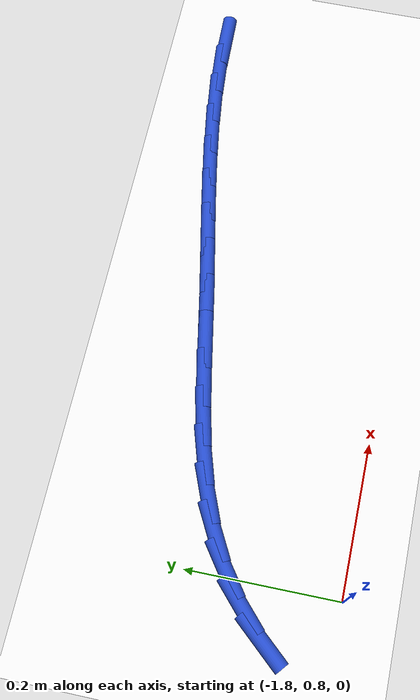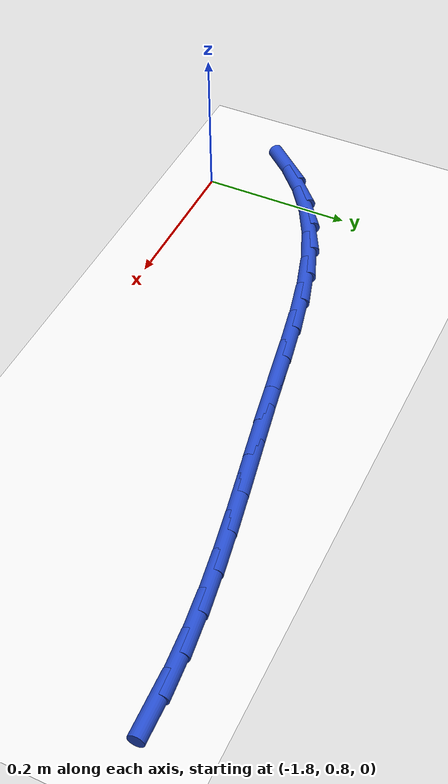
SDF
<sdf version="1.6">
 <world name="default">
  <model name="ground_plane">
   <static>1</static>
   <link name="link">
    <collision name="collision">
     <geometry><plane><normal>0 0 1</normal><size>100 100</size></plane></geometry>
     <surface><friction><ode><mu>100</mu><mu2>50</mu2></ode></friction></surface>
    </collision>
    <visual name="visual">
     <cast_shadows>0</cast_shadows>
     <geometry><plane><normal>0 0 1</normal><size>100 100</size></plane></geometry>
     <material>
      <script><uri>file://media/materials/scripts/gazebo.material</uri><name>Gazebo/WhiteGlow</name></script>
     </material>
    </visual>
   </link>
  </model>
  <model name="line">
   <link name="link_33">
    <pose>-1.0421362414602608 1.1120664891370888 0.01 0 1.57 0.03589282977141568</pose>
    <collision name="collision">
     <geometry><cylinder><radius>0.01</radius><length>0.08</length></cylinder></geometry>
    </collision>
    <visual name="visual">
     <material>
      <script><name>Gazebo/Blue</name><uri>file://media/materials/scripts/gazebo.material</uri></script>
     </material>
     <geometry><cylinder><radius>0.01</radius><length>0.08</length></cylinder></geometry>
    </visual>
   </link>
   <link name="link_34">
    <pose>-1.0915548540886764 1.110291953178951 0.01 0 1.57 0.09028207268165225</pose>
    <collision name="collision">
     <geometry><cylinder><radius>0.01</radius><length>0.08</length></cylinder></geometry>
    </collision>
    <visual name="visual">
     <material>
      <script><name>Gazebo/Blue</name><uri>file://media/materials/scripts/gazebo.material</uri></script>
     </material>
     <geometry><cylinder><radius>0.01</radius><length>0.08</length></cylinder></geometry>
    </visual>
   </link>
   <link name="link_35">
    <pose>-1.1419461207254604 1.1057301241764395 0.01 0 1.57 0.13293137946179848</pose>
    <collision name="collision">
     <geometry><cylinder><radius>0.01</radius><length>0.08</length></cylinder></geometry>
    </collision>
    <visual name="visual">
     <material>
      <script><name>Gazebo/Blue</name><uri>file://media/materials/scripts/gazebo.material</uri></script>
     </material>
     <geometry><cylinder><radius>0.01</radius><length>0.08</length></cylinder></geometry>
    </visual>
   </link>
   <link name="link_36">
    <pose>-1.1931289577275788 1.0988859576213652 0.01 0 1.57 0.16494818981463039</pose>
    <collision name="collision">
     <geometry><cylinder><radius>0.01</radius><length>0.08</length></cylinder></geometry>
    </collision>
    <visual name="visual">
     <material>
      <script><name>Gazebo/Blue</name><uri>file://media/materials/scripts/gazebo.material</uri></script>
     </material>
     <geometry><cylinder><radius>0.01</radius><length>0.08</length></cylinder></geometry>
    </visual>
   </link>
   <link name="link_37">
    <pose>-1.2449222814519982 1.0902644090055393 0.01 0 1.57 0.18723807308191537</pose>
    <collision name="collision">
     <geometry><cylinder><radius>0.01</radius><length>0.08</length></cylinder></geometry>
    </collision>
    <visual name="visual">
     <material>
      <script><name>Gazebo/Blue</name><uri>file://media/materials/scripts/gazebo.material</uri></script>
     </material>
     <geometry><cylinder><radius>0.01</radius><length>0.08</length></cylinder></geometry>
    </visual>
   </link>
   <link name="link_38">
    <pose>-1.2971450082556841 1.0803704338207734 0.01 0 1.57 0.20045831214298673</pose>
    <collision name="collision">
     <geometry><cylinder><radius>0.01</radius><length>0.08</length></cylinder></geometry>
    </collision>
    <visual name="visual">
     <material>
      <script><name>Gazebo/Blue</name><uri>file://media/materials/scripts/gazebo.material</uri></script>
     </material>
     <geometry><cylinder><radius>0.01</radius><length>0.08</length></cylinder></geometry>
    </visual>
   </link>
   <link name="link_39">
    <pose>-1.349616054495604 1.0697089875588792 0.01 0 1.57 0.20500290673838595</pose>
    <collision name="collision">
     <geometry><cylinder><radius>0.01</radius><length>0.08</length></cylinder></geometry>
    </collision>
    <visual name="visual">
     <material>
      <script><name>Gazebo/Blue</name><uri>file://media/materials/scripts/gazebo.material</uri></script>
     </material>
     <geometry><cylinder><radius>0.01</radius><length>0.08</length></cylinder></geometry>
    </visual>
   </link>
   <link name="link_40">
    <pose>-1.402154336528723 1.058785025711667 0.01 0 1.57 0.20099951129701538</pose>
    <collision name="collision">
     <geometry><cylinder><radius>0.01</radius><length>0.08</length></cylinder></geometry>
    </collision>
    <visual name="visual">
     <material>
      <script><name>Gazebo/Blue</name><uri>file://media/materials/scripts/gazebo.material</uri></script>
     </material>
     <geometry><cylinder><radius>0.01</radius><length>0.08</length></cylinder></geometry>
    </visual>
   </link>
   <link name="link_41">
    <pose>-1.4545787707120077 1.0481035037709487 0.01 0 1.57 0.19035575516878378</pose>
    <collision name="collision">
     <geometry><cylinder><radius>0.01</radius><length>0.08</length></cylinder></geometry>
    </collision>
    <visual name="visual">
     <material>
      <script><name>Gazebo/Blue</name><uri>file://media/materials/scripts/gazebo.material</uri></script>
     </material>
     <geometry><cylinder><radius>0.01</radius><length>0.08</length></cylinder></geometry>
    </visual>
   </link>
   <link name="link_42">
    <pose>-1.5066891190608542 1.0380624245166032 0.01 0 1.57 0.18979165449557356</pose>
    <collision name="collision">
     <geometry><cylinder><radius>0.01</radius><length>0.08</length></cylinder></geometry>
    </collision>
    <visual name="visual">
     <material>
      <script><name>Gazebo/Blue</name><uri>file://media/materials/scripts/gazebo.material</uri></script>
     </material>
     <geometry><cylinder><radius>0.01</radius><length>0.08</length></cylinder></geometry>
    </visual>
   </link>
   <link name="link_43">
    <pose>-1.5581277363635657 1.0281808709414084 0.01 0 1.57 0.20822228529177902</pose>
    <collision name="collision">
     <geometry><cylinder><radius>0.01</radius><length>0.08</length></cylinder></geometry>
    </collision>
    <visual name="visual">
     <material>
      <script><name>Gazebo/Blue</name><uri>file://media/materials/scripts/gazebo.material</uri></script>
     </material>
     <geometry><cylinder><radius>0.01</radius><length>0.08</length></cylinder></geometry>
    </visual>
   </link>
   <link name="link_44">
    <pose>-1.608459711888231 1.0175464960724767 0.01 0 1.57 0.24700412809022887</pose>
    <collision name="collision">
     <geometry><cylinder><radius>0.01</radius><length>0.08</length></cylinder></geometry>
    </collision>
    <visual name="visual">
     <material>
      <script><name>Gazebo/Blue</name><uri>file://media/materials/scripts/gazebo.material</uri></script>
     </material>
     <geometry><cylinder><radius>0.01</radius><length>0.08</length></cylinder></geometry>
    </visual>
   </link>
   <link name="link_45">
    <pose>-1.657249601015596 1.0052439718530408 0.01 0 1.57 0.3078813010276879</pose>
    <collision name="collision">
     <geometry><cylinder><radius>0.01</radius><length>0.08</length></cylinder></geometry>
    </collision>
    <visual name="visual">
     <material>
      <script><name>Gazebo/Blue</name><uri>file://media/materials/scripts/gazebo.material</uri></script>
     </material>
     <geometry><cylinder><radius>0.01</radius><length>0.08</length></cylinder></geometry>
    </visual>
   </link>
   <link name="link_46">
    <pose>-1.7040619591264083 0.9903579702263322 0.01 0 1.57 0.3925833586291731</pose>
    <collision name="collision">
     <geometry><cylinder><radius>0.01</radius><length>0.08</length></cylinder></geometry>
    </collision>
    <visual name="visual">
     <material>
      <script><name>Gazebo/Blue</name><uri>file://media/materials/scripts/gazebo.material</uri></script>
     </material>
     <geometry><cylinder><radius>0.01</radius><length>0.08</length></cylinder></geometry>
    </visual>
   </link>
   <link name="link_47">
    <pose>-1.7484613416014139 0.9719731631355837 0.01 0 1.57 0.5018432439867829</pose>
    <collision name="collision">
     <geometry><cylinder><radius>0.01</radius><length>0.08</length></cylinder></geometry>
    </collision>
    <visual name="visual">
     <material>
      <script><name>Gazebo/Blue</name><uri>file://media/materials/scripts/gazebo.material</uri></script>
     </material>
     <geometry><cylinder><radius>0.01</radius><length>0.08</length></cylinder></geometry>
    </visual>
   </link>
   <link name="link_48">
    <pose>-1.7900123038213607 0.9491742225240279 0.01 0 1.57 0.6302608758906472</pose>
    <collision name="collision">
     <geometry><cylinder><radius>0.01</radius><length>0.08</length></cylinder></geometry>
    </collision>
    <visual name="visual">
     <material>
      <script><name>Gazebo/Blue</name><uri>file://media/materials/scripts/gazebo.material</uri></script>
     </material>
     <geometry><cylinder><radius>0.01</radius><length>0.08</length></cylinder></geometry>
    </visual>
   </link>
   <link name="link_49">
    <pose>-1.828338109807432 0.921214996509267 0.01 0 1.57 0.7533784462173198</pose>
    <collision name="collision">
     <geometry><cylinder><radius>0.01</radius><length>0.08</length></cylinder></geometry>
    </collision>
    <visual name="visual">
     <material>
      <script><name>Gazebo/Blue</name><uri>file://media/materials/scripts/gazebo.material</uri></script>
     </material>
     <geometry><cylinder><radius>0.01</radius><length>0.08</length></cylinder></geometry>
    </visual>
   </link>
   <link name="link_50">
    <pose>-1.8634016368961643 0.8883279707830062 0.01 0 1.57 0.8625811211916941</pose>
    <collision name="collision">
     <geometry><cylinder><radius>0.01</radius><length>0.08</length></cylinder></geometry>
    </collision>
    <visual name="visual">
     <material>
      <script><name>Gazebo/Blue</name><uri>file://media/materials/scripts/gazebo.material</uri></script>
     </material>
     <geometry><cylinder><radius>0.01</radius><length>0.08</length></cylinder></geometry>
    </visual>
   </link>
  </model>
 </world>
</sdf>
